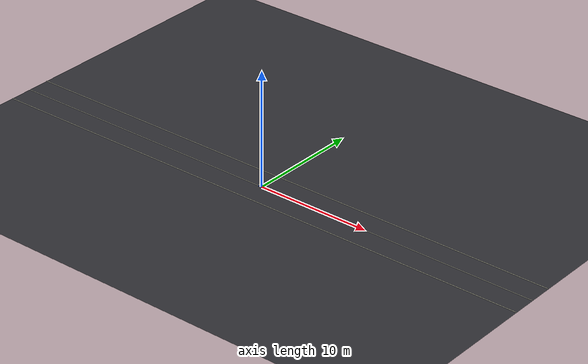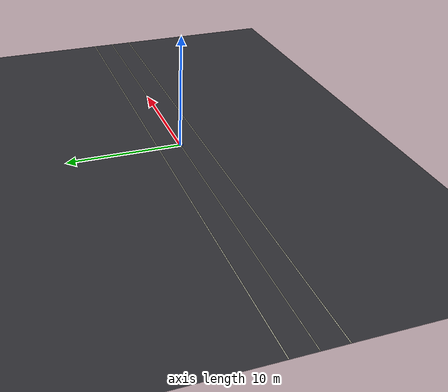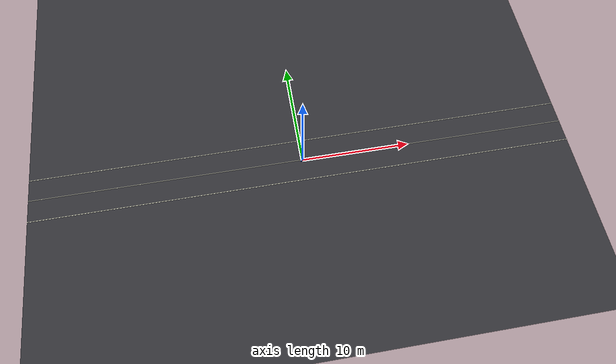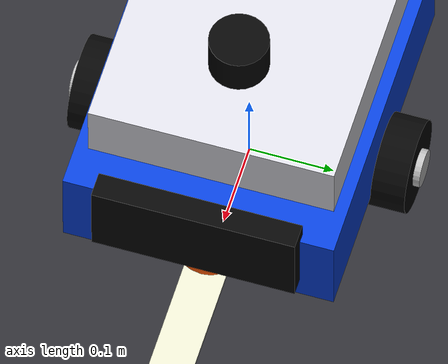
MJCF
<mujoco model="turtlebot3_waffle_pi">

    <option timestep="0.002"
            gravity="0 0 -9.81"
            integrator="RK4"/>

    <compiler angle="radian"/>

    <visual>
        <map znear="0.01" zfar="100"/>
        <quality shadowsize="2048"/>

        <headlight
            ambient="0.5 0.5 0.5"
            diffuse="0.8 0.8 0.8"
            specular="0.2 0.2 0.2"/>

        <global
            offwidth="1600"
            offheight="1000"/>
    </visual>

    <default>

        <joint
            damping="1.0"
            armature="0.01"/>

        <geom
            condim="3"
            friction="2.0 0.7 0.1"/>

    </default>

    <asset>

        <material
            name="road"
            rgba="0.18 0.18 0.20 1"/>

        <material
            name="road_marking"
            rgba="0.90 0.90 0.80 1"/>

        <material
            name="blue"
            rgba="0.03 0.25 0.85 1"/>

        <material
            name="body_light"
            rgba="0.85 0.85 0.88 1"/>

        <material
            name="black"
            rgba="0.02 0.02 0.02 1"/>

        <material
            name="hub"
            rgba="0.75 0.75 0.75 1"/>

        <material
            name="orange"
            rgba="1.0 0.35 0.02 1"/>

    </asset>

    <worldbody>

        <!-- GROUND -->

        <geom
            name="road"
            type="plane"
            pos="0 0 0"
            size="25 25 0.1"
            material="road"
            friction="2.0 0.7 0.1"/>

        <!-- ROAD EDGES -->

        <geom
            name="left_edge"
            type="box"
            pos="0 2.0 0.002"
            size="25 0.03 0.002"
            material="road_marking"
            contype="0"
            conaffinity="0"/>

        <geom
            name="right_edge"
            type="box"
            pos="0 -2.0 0.002"
            size="25 0.03 0.002"
            material="road_marking"
            contype="0"
            conaffinity="0"/>

        <!-- CENTER LINE -->

        <geom
            name="center_line"
            type="box"
            pos="0 0 0.003"
            size="25 0.025 0.002"
            material="road_marking"
            contype="0"
            conaffinity="0"/>

        <!-- LIGHTING -->

        <light
            name="key_light"
            pos="2 -3 5"
            directional="true"
            diffuse="1 1 1"
            specular="0.2 0.2 0.2"/>

        <light
            name="fill_light"
            pos="-3 2 4"
            directional="true"
            diffuse="0.6 0.6 0.6"/>

        <!-- TURTLEBOT3 WAFFLE PI -->

        <body
            name="base_link"
            pos="0 0 0.11">

            <!-- X MOVEMENT -->

            <joint
                name="base_x"
                type="slide"
                axis="1 0 0"
                damping="2.0"
                armature="0.02"/>

            <!-- Y MOVEMENT -->

            <joint
                name="base_y"
                type="slide"
                axis="0 1 0"
                damping="2.0"
                armature="0.02"/>

            <!-- YAW -->

            <joint
                name="base_yaw"
                type="hinge"
                axis="0 0 1"
                damping="1.5"
                armature="0.02"/>

            <!-- MAIN CHASSIS -->

            <geom
                name="base_chassis"
                type="box"
                pos="0 0 0"
                size="0.20 0.16 0.055"
                mass="2.0"
                material="blue"
                friction="2.0 0.7 0.1"/>

            <!-- UPPER BODY -->

            <geom
                name="upper_body"
                type="box"
                pos="-0.02 0 0.09"
                size="0.17 0.145 0.04"
                mass="0.4"
                material="body_light"/>

            <!-- FRONT PANEL -->

            <geom
                name="front_panel"
                type="box"
                pos="0.205 0 0.025"
                size="0.015 0.12 0.05"
                mass="0.05"
                material="black"/>

            <!-- LEFT WHEEL -->

            <body
                name="left_wheel"
                pos="0 0.175 -0.055">

                <joint
                    name="left_wheel_joint"
                    type="hinge"
                    axis="0 1 0"
                    damping="0.1"
                    armature="0.01"/>

                <geom
                    name="left_wheel"
                    type="cylinder"
                    size="0.055 0.025"
                    mass="0.20"
                    euler="1.5707963 0 0"
                    material="black"
                    friction="2.0 0.8 0.1"/>

                <geom
                    name="left_hub"
                    type="cylinder"
                    pos="0 0.027 0"
                    size="0.022 0.006"
                    euler="1.5707963 0 0"
                    material="hub"/>

            </body>

            <!-- RIGHT WHEEL -->

            <body
                name="right_wheel"
                pos="0 -0.175 -0.055">

                <joint
                    name="right_wheel_joint"
                    type="hinge"
                    axis="0 1 0"
                    damping="0.1"
                    armature="0.01"/>

                <geom
                    name="right_wheel"
                    type="cylinder"
                    size="0.055 0.025"
                    mass="0.20"
                    euler="1.5707963 0 0"
                    material="black"
                    friction="2.0 0.8 0.1"/>

                <geom
                    name="right_hub"
                    type="cylinder"
                    pos="0 -0.027 0"
                    size="0.022 0.006"
                    euler="1.5707963 0 0"
                    material="hub"/>

            </body>

            <!-- FRONT CASTER -->

            <body
                name="front_caster"
                pos="0.15 0 -0.065">

                <geom
                    name="caster"
                    type="sphere"
                    size="0.045"
                    mass="0.10"
                    material="orange"
                    friction="2.0 0.8 0.1"/>

            </body>

            <!-- TOP SENSOR -->

            <body
                name="sensor"
                pos="0.04 0 0.16">

                <geom
                    name="sensor_body"
                    type="cylinder"
                    size="0.035 0.025"
                    mass="0.05"
                    material="black"/>

            </body>

        </body>

    </worldbody>

    <!-- WHEEL ACTUATORS -->

    <actuator>

        <velocity
            name="left_motor"
            joint="left_wheel_joint"
            kv="5"/>

        <velocity
            name="right_motor"
            joint="right_wheel_joint"
            kv="5"/>

    </actuator>

</mujoco>
